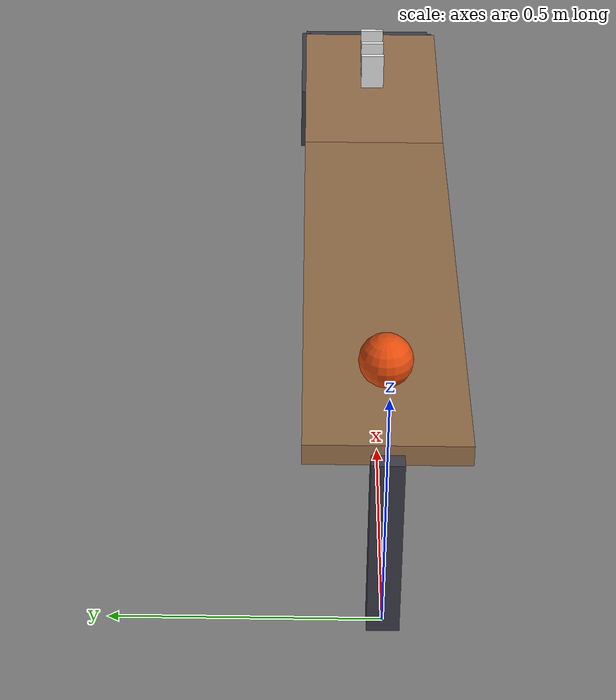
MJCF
<mujoco model="ramp,_dominoes_and_cup">
  <compiler angle="radian"/>
  <option timestep="0.002"/>
  <worldbody>
    <geom name="floor" type="plane" size="6 6 0.1" friction="0.8 0.005 0.002"/>
    <body name="shelf">
      <geom name="shelf" type="box" pos="1.3 0 0.15" size="0.4 0.15 0.15" friction="0.8 0.001 0.0001" rgba="0.6 0.45 0.3 1"/>
    </body>
    <body name="ramp">
      <geom name="ramp" type="box" pos="0.6 0 0.33" size="0.60208 0.15 0.02" euler="0 0.0831412 0" friction="0.8 0.001 0.0001" rgba="0.6 0.45 0.3 1"/>
    </body>
    <body name="ramp leg">
      <geom name="ramp leg" type="box" pos="0 0 0.19" size="0.03 0.03 0.19" rgba="0.25 0.25 0.3 1"/>
    </body>
    <body name="ball1" pos="0.209109 0 0.432817">
      <freejoint/>
      <geom name="ball1" type="sphere" pos="0 0 0" size="0.05" mass="0.06" condim="6" friction="0.8 0.001 0.0001" solref="0.01 1" rgba="0.9 0.3 0.05 1"/>
    </body>
    <body name="d1" pos="1.45 0 0.34">
      <freejoint/>
      <geom name="d1" type="box" pos="0 0 0" size="0.005 0.025 0.04" mass="0.03" friction="0.6 0.005 0.0001" rgba="0.95 0.95 0.95 1"/>
    </body>
    <body name="d2" pos="1.51 0 0.34">
      <freejoint/>
      <geom name="d2" type="box" pos="0 0 0" size="0.005 0.025 0.04" mass="0.03" friction="0.6 0.005 0.0001" rgba="0.95 0.95 0.95 1"/>
    </body>
    <body name="d3" pos="1.57 0 0.34">
      <freejoint/>
      <geom name="d3" type="box" pos="0 0 0" size="0.005 0.025 0.04" mass="0.03" friction="0.6 0.005 0.0001" rgba="0.95 0.95 0.95 1"/>
    </body>
    <body name="ball2" pos="1.625 0 0.32">
      <freejoint/>
      <geom name="ball2" type="sphere" pos="0 0 0" size="0.02" mass="0.02" condim="6" friction="0.8 0.001 0.0001" solref="0.01 1" rgba="0.9 0.3 0.05 1"/>
    </body>
    <body name="cup">
      <geom name="cup_base" type="box" pos="1.84 0 0.01" size="0.15 0.15 0.01" friction="0.8 0.005 0.002" solref="0.01 1" rgba="0.25 0.25 0.3 1"/>
      <geom name="cup_near_wall" type="box" pos="1.69 0 0.075" size="0.01 0.15 0.075" friction="0.8 0.005 0.002" solref="0.01 1" rgba="0.25 0.25 0.3 1"/>
      <geom name="cup_far_wall" type="box" pos="1.99 0 0.075" size="0.01 0.15 0.075" friction="0.8 0.005 0.002" solref="0.01 1" rgba="0.25 0.25 0.3 1"/>
      <geom name="cup_left_wall" type="box" pos="1.84 0.15 0.075" size="0.15 0.01 0.075" friction="0.8 0.005 0.002" solref="0.01 1" rgba="0.25 0.25 0.3 1"/>
      <geom name="cup_right_wall" type="box" pos="1.84 -0.15 0.075" size="0.15 0.01 0.075" friction="0.8 0.005 0.002" solref="0.01 1" rgba="0.25 0.25 0.3 1"/>
    </body>
  </worldbody>
  <keyframe>
    <key name="start" qpos="0.209109 0 0.432817 1 0 0 0 1.45 0 0.34 1 0 0 0 1.51 0 0.34 1 0 0 0 1.57 0 0.34 1 0 0 0 1.625 0 0.32 1 0 0 0" qvel="0 0 0 0 0 0 0 0 0 0 0 0 0 0 0 0 0 0 0 0 0 0 0 0 0 0 0 0 0 0"/>
  </keyframe>
</mujoco>
